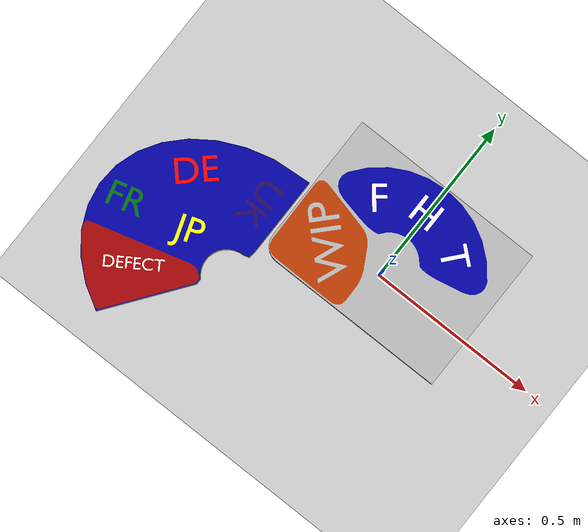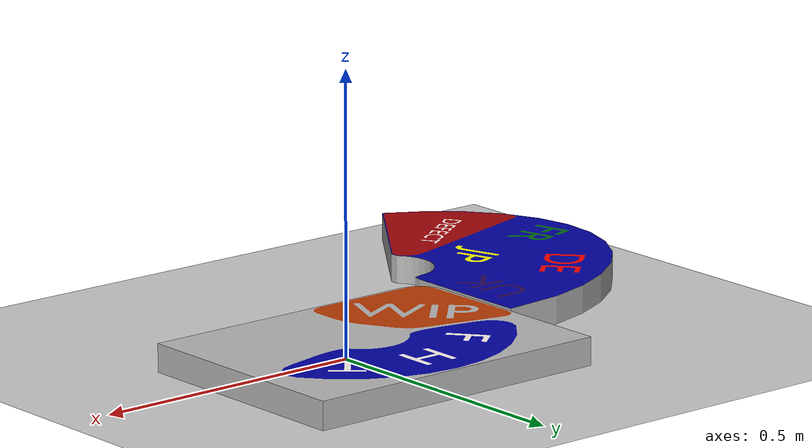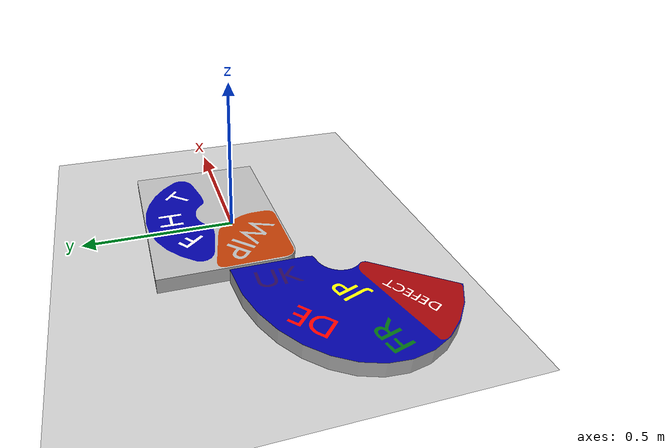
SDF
<?xml version="1.0" ?>
<sdf version="1.4">
  <world name="default">
    <include>
      <uri>model://ground_plane</uri>
    </include>
    <include>
      <uri>model://sun</uri>
    </include>
    <include>
      <uri>model://production_zones_static</uri>
       <pose>0 0 -0.0198 0 0 0</pose>
    </include>
  </world>
</sdf>

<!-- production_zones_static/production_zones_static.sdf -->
<sdf version='1.4'>
  <model name="production_zones_static">
    <static>true</static>
    <pose>0 0 0 0 0 0</pose>

    <link name="test_zones">
      <pose>0 0 0.02 0 0 0</pose>
      <visual name="colored-zones">
        <geometry>
          <mesh>
            <uri>model://production_zones_static/meshes/production_zones_static.dae</uri>
          </mesh>
        </geometry>
      </visual>
      <collision name="colored-zones">
        <geometry>
          <mesh>
            <uri>model://production_zones_static/meshes/production_zones_static.dae</uri>
          </mesh>
        </geometry>
      </collision>
    </link>

  </model>
</sdf>
